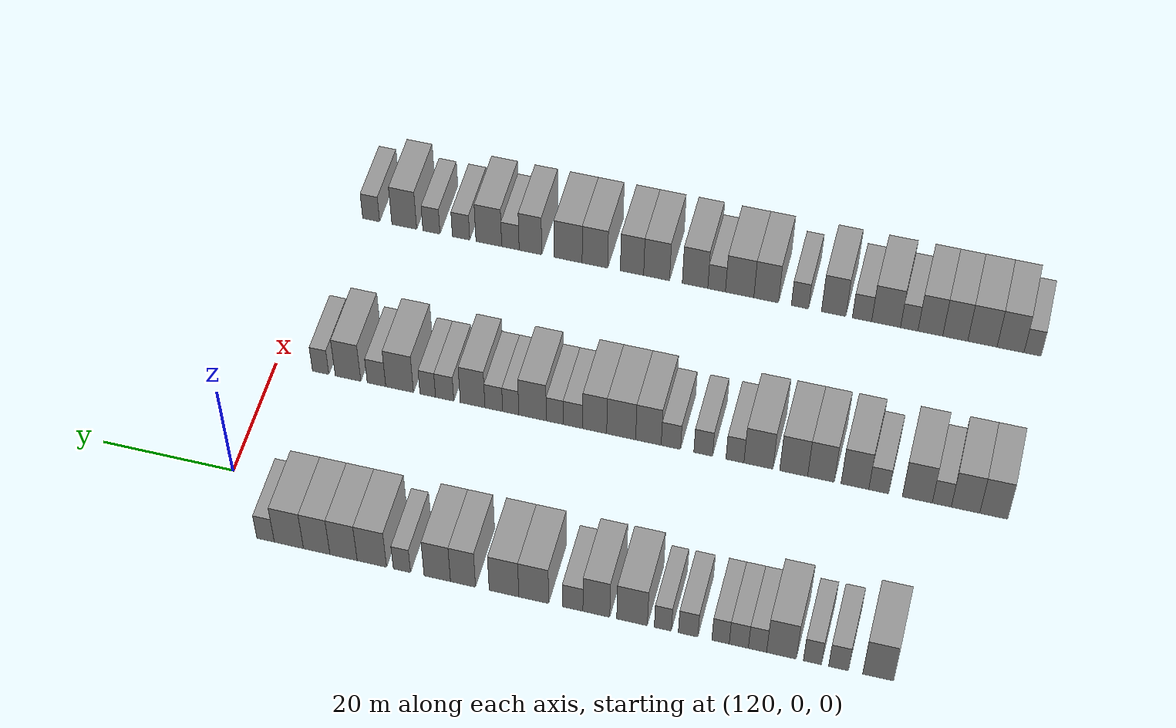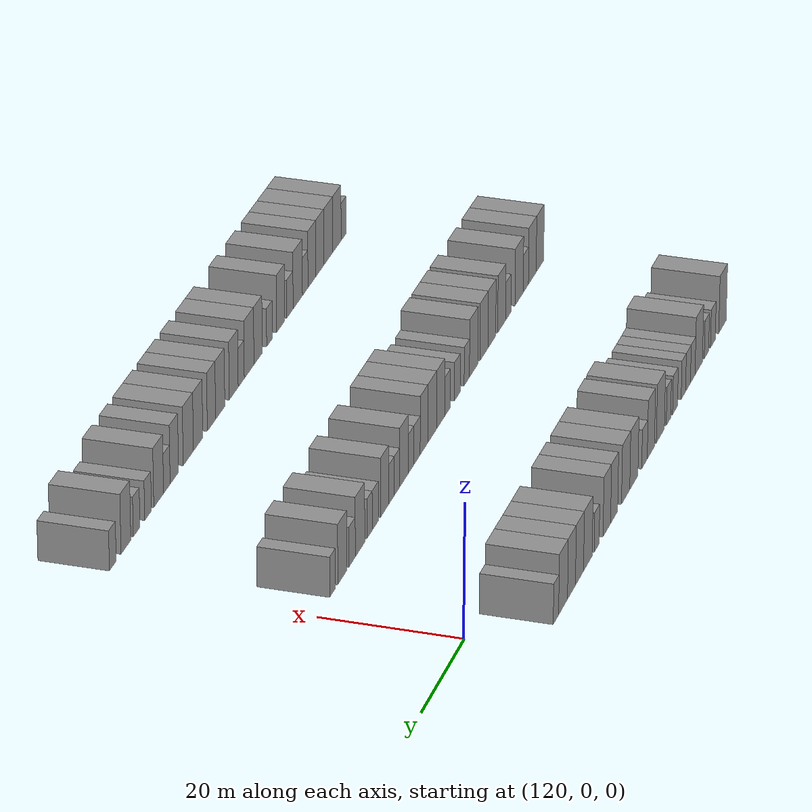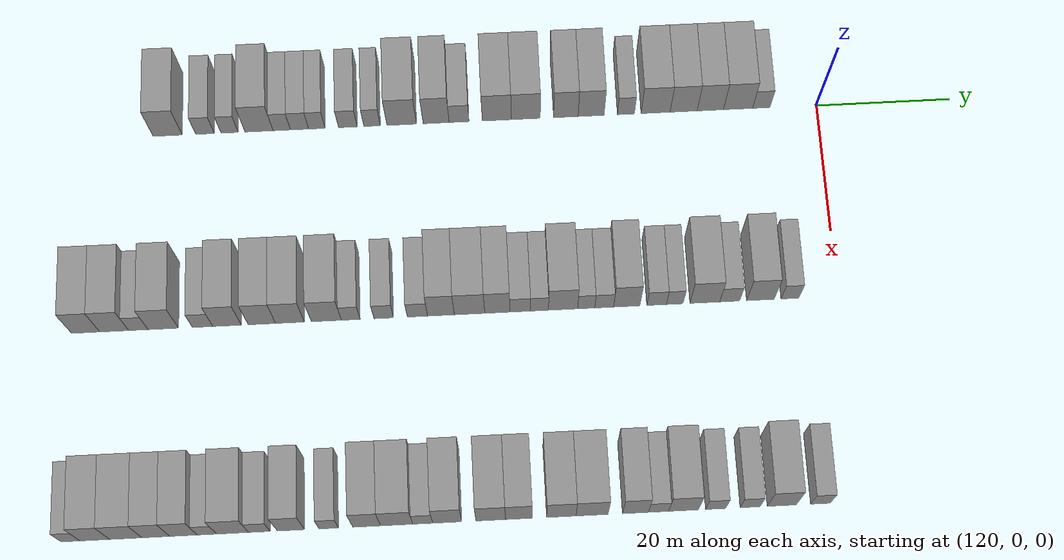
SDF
<sdf version="1.6">
 <world name="default">
  <model name="building_761">
   <static>1</static>
   <pose>115.0000 -97.0466 0 0.000000 0.000000 0.000000</pose>
   <link name="link">
    <pose>0 0 4.50 0 0 0</pose>
    <collision name="collision"><geometry><box><size>10.0000 4.3271 9.0000</size></box></geometry></collision>
    <visual name="visual">
     <cast_shadows>0</cast_shadows>
     <geometry><box><size>10.0000 4.3271 9.0000</size></box></geometry>
     <material>
      <script>
       <uri>model://grey_wall/materials/scripts</uri>
       <uri>model://grey_wall/materials/textures</uri>
       <name>vrc/grey_wall</name>
      </script>
     </material>
    </visual>
   </link>
  </model>
  <model name="building_762">
   <static>1</static>
   <pose>115.0000 -91.4941 0 0.000000 0.000000 0.000000</pose>
   <link name="link">
    <pose>0 0 3.00 0 0 0</pose>
    <collision name="collision"><geometry><box><size>10.0000 2.7779 6.0000</size></box></geometry></collision>
    <visual name="visual">
     <cast_shadows>0</cast_shadows>
     <geometry><box><size>10.0000 2.7779 6.0000</size></box></geometry>
     <material>
      <script>
       <uri>model://grey_wall/materials/scripts</uri>
       <uri>model://grey_wall/materials/textures</uri>
       <name>vrc/grey_wall</name>
      </script>
     </material>
    </visual>
   </link>
  </model>
  <model name="building_763">
   <static>1</static>
   <pose>115.0000 -87.8286 0 0.000000 0.000000 0.000000</pose>
   <link name="link">
    <pose>0 0 3.00 0 0 0</pose>
    <collision name="collision"><geometry><box><size>10.0000 2.5532 6.0000</size></box></geometry></collision>
    <visual name="visual">
     <cast_shadows>0</cast_shadows>
     <geometry><box><size>10.0000 2.5532 6.0000</size></box></geometry>
     <material>
      <script>
       <uri>model://grey_wall/materials/scripts</uri>
       <uri>model://grey_wall/materials/textures</uri>
       <name>vrc/grey_wall</name>
      </script>
     </material>
    </visual>
   </link>
  </model>
  <model name="building_764">
   <static>1</static>
   <pose>115.0000 -83.4546 0 0.000000 0.000000 0.000000</pose>
   <link name="link">
    <pose>0 0 4.50 0 0 0</pose>
    <collision name="collision"><geometry><box><size>10.0000 4.1949 9.0000</size></box></geometry></collision>
    <visual name="visual">
     <cast_shadows>0</cast_shadows>
     <geometry><box><size>10.0000 4.1949 9.0000</size></box></geometry>
     <material>
      <script>
       <uri>model://grey_wall/materials/scripts</uri>
       <uri>model://grey_wall/materials/textures</uri>
       <name>vrc/grey_wall</name>
      </script>
     </material>
    </visual>
   </link>
  </model>
  <model name="building_765">
   <static>1</static>
   <pose>115.0000 -80.0646 0 0.000000 0.000000 0.000000</pose>
   <link name="link">
    <pose>0 0 3.00 0 0 0</pose>
    <collision name="collision"><geometry><box><size>10.0000 2.5852 6.0000</size></box></geometry></collision>
    <visual name="visual">
     <cast_shadows>0</cast_shadows>
     <geometry><box><size>10.0000 2.5852 6.0000</size></box></geometry>
     <material>
      <script>
       <uri>model://grey_wall/materials/scripts</uri>
       <uri>model://grey_wall/materials/textures</uri>
       <name>vrc/grey_wall</name>
      </script>
     </material>
    </visual>
   </link>
  </model>
  <model name="building_766">
   <static>1</static>
   <pose>115.0000 -77.4137 0 0.000000 0.000000 0.000000</pose>
   <link name="link">
    <pose>0 0 3.00 0 0 0</pose>
    <collision name="collision"><geometry><box><size>10.0000 2.7165 6.0000</size></box></geometry></collision>
    <visual name="visual">
     <cast_shadows>0</cast_shadows>
     <geometry><box><size>10.0000 2.7165 6.0000</size></box></geometry>
     <material>
      <script>
       <uri>model://grey_wall/materials/scripts</uri>
       <uri>model://grey_wall/materials/textures</uri>
       <name>vrc/grey_wall</name>
      </script>
     </material>
    </visual>
   </link>
  </model>
  <model name="building_767">
   <static>1</static>
   <pose>115.0000 -74.8242 0 0.000000 0.000000 0.000000</pose>
   <link name="link">
    <pose>0 0 3.00 0 0 0</pose>
    <collision name="collision"><geometry><box><size>10.0000 2.4624 6.0000</size></box></geometry></collision>
    <visual name="visual">
     <cast_shadows>0</cast_shadows>
     <geometry><box><size>10.0000 2.4624 6.0000</size></box></geometry>
     <material>
      <script>
       <uri>model://grey_wall/materials/scripts</uri>
       <uri>model://grey_wall/materials/textures</uri>
       <name>vrc/grey_wall</name>
      </script>
     </material>
    </visual>
   </link>
  </model>
  <model name="building_768">
   <static>1</static>
   <pose>115.0000 -70.2018 0 0.000000 0.000000 0.000000</pose>
   <link name="link">
    <pose>0 0 3.00 0 0 0</pose>
    <collision name="collision"><geometry><box><size>10.0000 2.7823 6.0000</size></box></geometry></collision>
    <visual name="visual">
     <cast_shadows>0</cast_shadows>
     <geometry><box><size>10.0000 2.7823 6.0000</size></box></geometry>
     <material>
      <script>
       <uri>model://grey_wall/materials/scripts</uri>
       <uri>model://grey_wall/materials/textures</uri>
       <name>vrc/grey_wall</name>
      </script>
     </material>
    </visual>
   </link>
  </model>
  <model name="building_769">
   <static>1</static>
   <pose>115.0000 -66.5893 0 0.000000 0.000000 0.000000</pose>
   <link name="link">
    <pose>0 0 3.00 0 0 0</pose>
    <collision name="collision"><geometry><box><size>10.0000 2.4428 6.0000</size></box></geometry></collision>
    <visual name="visual">
     <cast_shadows>0</cast_shadows>
     <geometry><box><size>10.0000 2.4428 6.0000</size></box></geometry>
     <material>
      <script>
       <uri>model://grey_wall/materials/scripts</uri>
       <uri>model://grey_wall/materials/textures</uri>
       <name>vrc/grey_wall</name>
      </script>
     </material>
    </visual>
   </link>
  </model>
  <model name="building_770">
   <static>1</static>
   <pose>115.0000 -62.1662 0 0.000000 0.000000 0.000000</pose>
   <link name="link">
    <pose>0 0 4.50 0 0 0</pose>
    <collision name="collision"><geometry><box><size>10.0000 4.4035 9.0000</size></box></geometry></collision>
    <visual name="visual">
     <cast_shadows>0</cast_shadows>
     <geometry><box><size>10.0000 4.4035 9.0000</size></box></geometry>
     <material>
      <script>
       <uri>model://grey_wall/materials/scripts</uri>
       <uri>model://grey_wall/materials/textures</uri>
       <name>vrc/grey_wall</name>
      </script>
     </material>
    </visual>
   </link>
  </model>
  <model name="building_771">
   <static>1</static>
   <pose>115.0000 -57.0259 0 0.000000 0.000000 0.000000</pose>
   <link name="link">
    <pose>0 0 4.50 0 0 0</pose>
    <collision name="collision"><geometry><box><size>10.0000 3.8770 9.0000</size></box></geometry></collision>
    <visual name="visual">
     <cast_shadows>0</cast_shadows>
     <geometry><box><size>10.0000 3.8770 9.0000</size></box></geometry>
     <material>
      <script>
       <uri>model://grey_wall/materials/scripts</uri>
       <uri>model://grey_wall/materials/textures</uri>
       <name>vrc/grey_wall</name>
      </script>
     </material>
    </visual>
   </link>
  </model>
  <model name="building_772">
   <static>1</static>
   <pose>115.0000 -53.6048 0 0.000000 0.000000 0.000000</pose>
   <link name="link">
    <pose>0 0 3.00 0 0 0</pose>
    <collision name="collision"><geometry><box><size>10.0000 2.9653 6.0000</size></box></geometry></collision>
    <visual name="visual">
     <cast_shadows>0</cast_shadows>
     <geometry><box><size>10.0000 2.9653 6.0000</size></box></geometry>
     <material>
      <script>
       <uri>model://grey_wall/materials/scripts</uri>
       <uri>model://grey_wall/materials/textures</uri>
       <name>vrc/grey_wall</name>
      </script>
     </material>
    </visual>
   </link>
  </model>
  <model name="building_773">
   <static>1</static>
   <pose>115.0000 -47.9509 0 0.000000 0.000000 0.000000</pose>
   <link name="link">
    <pose>0 0 4.50 0 0 0</pose>
    <collision name="collision"><geometry><box><size>10.0000 4.3425 9.0000</size></box></geometry></collision>
    <visual name="visual">
     <cast_shadows>0</cast_shadows>
     <geometry><box><size>10.0000 4.3425 9.0000</size></box></geometry>
     <material>
      <script>
       <uri>model://grey_wall/materials/scripts</uri>
       <uri>model://grey_wall/materials/textures</uri>
       <name>vrc/grey_wall</name>
      </script>
     </material>
    </visual>
   </link>
  </model>
  <model name="building_774">
   <static>1</static>
   <pose>115.0000 -43.6194 0 0.000000 0.000000 0.000000</pose>
   <link name="link">
    <pose>0 0 4.50 0 0 0</pose>
    <collision name="collision"><geometry><box><size>10.0000 4.3204 9.0000</size></box></geometry></collision>
    <visual name="visual">
     <cast_shadows>0</cast_shadows>
     <geometry><box><size>10.0000 4.3204 9.0000</size></box></geometry>
     <material>
      <script>
       <uri>model://grey_wall/materials/scripts</uri>
       <uri>model://grey_wall/materials/textures</uri>
       <name>vrc/grey_wall</name>
      </script>
     </material>
    </visual>
   </link>
  </model>
  <model name="building_775">
   <static>1</static>
   <pose>115.0000 -37.6234 0 0.000000 0.000000 0.000000</pose>
   <link name="link">
    <pose>0 0 4.50 0 0 0</pose>
    <collision name="collision"><geometry><box><size>10.0000 3.6717 9.0000</size></box></geometry></collision>
    <visual name="visual">
     <cast_shadows>0</cast_shadows>
     <geometry><box><size>10.0000 3.6717 9.0000</size></box></geometry>
     <material>
      <script>
       <uri>model://grey_wall/materials/scripts</uri>
       <uri>model://grey_wall/materials/textures</uri>
       <name>vrc/grey_wall</name>
      </script>
     </material>
    </visual>
   </link>
  </model>
  <model name="building_776">
   <static>1</static>
   <pose>115.0000 -33.8435 0 0.000000 0.000000 0.000000</pose>
   <link name="link">
    <pose>0 0 4.50 0 0 0</pose>
    <collision name="collision"><geometry><box><size>10.0000 3.8881 9.0000</size></box></geometry></collision>
    <visual name="visual">
     <cast_shadows>0</cast_shadows>
     <geometry><box><size>10.0000 3.8881 9.0000</size></box></geometry>
     <material>
      <script>
       <uri>model://grey_wall/materials/scripts</uri>
       <uri>model://grey_wall/materials/textures</uri>
       <name>vrc/grey_wall</name>
      </script>
     </material>
    </visual>
   </link>
  </model>
  <model name="building_777">
   <static>1</static>
   <pose>115.0000 -28.6272 0 0.000000 0.000000 0.000000</pose>
   <link name="link">
    <pose>0 0 3.00 0 0 0</pose>
    <collision name="collision"><geometry><box><size>10.0000 2.5444 6.0000</size></box></geometry></collision>
    <visual name="visual">
     <cast_shadows>0</cast_shadows>
     <geometry><box><size>10.0000 2.5444 6.0000</size></box></geometry>
     <material>
      <script>
       <uri>model://grey_wall/materials/scripts</uri>
       <uri>model://grey_wall/materials/textures</uri>
       <name>vrc/grey_wall</name>
      </script>
     </material>
    </visual>
   </link>
  </model>
  <model name="building_778">
   <static>1</static>
   <pose>115.0000 -24.1770 0 0.000000 0.000000 0.000000</pose>
   <link name="link">
    <pose>0 0 4.50 0 0 0</pose>
    <collision name="collision"><geometry><box><size>10.0000 4.3560 9.0000</size></box></geometry></collision>
    <visual name="visual">
     <cast_shadows>0</cast_shadows>
     <geometry><box><size>10.0000 4.3560 9.0000</size></box></geometry>
     <material>
      <script>
       <uri>model://grey_wall/materials/scripts</uri>
       <uri>model://grey_wall/materials/textures</uri>
       <name>vrc/grey_wall</name>
      </script>
     </material>
    </visual>
   </link>
  </model>
  <model name="building_779">
   <static>1</static>
   <pose>115.0000 -19.9684 0 0.000000 0.000000 0.000000</pose>
   <link name="link">
    <pose>0 0 4.50 0 0 0</pose>
    <collision name="collision"><geometry><box><size>10.0000 4.0613 9.0000</size></box></geometry></collision>
    <visual name="visual">
     <cast_shadows>0</cast_shadows>
     <geometry><box><size>10.0000 4.0613 9.0000</size></box></geometry>
     <material>
      <script>
       <uri>model://grey_wall/materials/scripts</uri>
       <uri>model://grey_wall/materials/textures</uri>
       <name>vrc/grey_wall</name>
      </script>
     </material>
    </visual>
   </link>
  </model>
  <model name="building_780">
   <static>1</static>
   <pose>115.0000 -15.9633 0 0.000000 0.000000 0.000000</pose>
   <link name="link">
    <pose>0 0 4.50 0 0 0</pose>
    <collision name="collision"><geometry><box><size>10.0000 3.9489 9.0000</size></box></geometry></collision>
    <visual name="visual">
     <cast_shadows>0</cast_shadows>
     <geometry><box><size>10.0000 3.9489 9.0000</size></box></geometry>
     <material>
      <script>
       <uri>model://grey_wall/materials/scripts</uri>
       <uri>model://grey_wall/materials/textures</uri>
       <name>vrc/grey_wall</name>
      </script>
     </material>
    </visual>
   </link>
  </model>
  <model name="building_781">
   <static>1</static>
   <pose>115.0000 -11.8020 0 0.000000 0.000000 0.000000</pose>
   <link name="link">
    <pose>0 0 4.50 0 0 0</pose>
    <collision name="collision"><geometry><box><size>10.0000 4.3737 9.0000</size></box></geometry></collision>
    <visual name="visual">
     <cast_shadows>0</cast_shadows>
     <geometry><box><size>10.0000 4.3737 9.0000</size></box></geometry>
     <material>
      <script>
       <uri>model://grey_wall/materials/scripts</uri>
       <uri>model://grey_wall/materials/textures</uri>
       <name>vrc/grey_wall</name>
      </script>
     </material>
    </visual>
   </link>
  </model>
  <model name="building_782">
   <static>1</static>
   <pose>115.0000 -8.3048 0 0.000000 0.000000 0.000000</pose>
   <link name="link">
    <pose>0 0 3.00 0 0 0</pose>
    <collision name="collision"><geometry><box><size>10.0000 2.6205 6.0000</size></box></geometry></collision>
    <visual name="visual">
     <cast_shadows>0</cast_shadows>
     <geometry><box><size>10.0000 2.6205 6.0000</size></box></geometry>
     <material>
      <script>
       <uri>model://grey_wall/materials/scripts</uri>
       <uri>model://grey_wall/materials/textures</uri>
       <name>vrc/grey_wall</name>
      </script>
     </material>
    </visual>
   </link>
  </model>
  <model name="building_979">
   <static>1</static>
   <pose>145.0000 -108.3825 0 0.000000 0.000000 0.000000</pose>
   <link name="link">
    <pose>0 0 4.50 0 0 0</pose>
    <collision name="collision"><geometry><box><size>10.0000 4.0479 9.0000</size></box></geometry></collision>
    <visual name="visual">
     <cast_shadows>0</cast_shadows>
     <geometry><box><size>10.0000 4.0479 9.0000</size></box></geometry>
     <material>
      <script>
       <uri>model://grey_wall/materials/scripts</uri>
       <uri>model://grey_wall/materials/textures</uri>
       <name>vrc/grey_wall</name>
      </script>
     </material>
    </visual>
   </link>
  </model>
  <model name="building_980">
   <static>1</static>
   <pose>145.0000 -104.2856 0 0.000000 0.000000 0.000000</pose>
   <link name="link">
    <pose>0 0 4.50 0 0 0</pose>
    <collision name="collision"><geometry><box><size>10.0000 4.1459 9.0000</size></box></geometry></collision>
    <visual name="visual">
     <cast_shadows>0</cast_shadows>
     <geometry><box><size>10.0000 4.1459 9.0000</size></box></geometry>
     <material>
      <script>
       <uri>model://grey_wall/materials/scripts</uri>
       <uri>model://grey_wall/materials/textures</uri>
       <name>vrc/grey_wall</name>
      </script>
     </material>
    </visual>
   </link>
  </model>
  <model name="building_981">
   <static>1</static>
   <pose>145.0000 -100.8281 0 0.000000 0.000000 0.000000</pose>
   <link name="link">
    <pose>0 0 3.00 0 0 0</pose>
    <collision name="collision"><geometry><box><size>10.0000 2.7692 6.0000</size></box></geometry></collision>
    <visual name="visual">
     <cast_shadows>0</cast_shadows>
     <geometry><box><size>10.0000 2.7692 6.0000</size></box></geometry>
     <material>
      <script>
       <uri>model://grey_wall/materials/scripts</uri>
       <uri>model://grey_wall/materials/textures</uri>
       <name>vrc/grey_wall</name>
      </script>
     </material>
    </visual>
   </link>
  </model>
  <model name="building_982">
   <static>1</static>
   <pose>145.0000 -97.2544 0 0.000000 0.000000 0.000000</pose>
   <link name="link">
    <pose>0 0 4.50 0 0 0</pose>
    <collision name="collision"><geometry><box><size>10.0000 4.3783 9.0000</size></box></geometry></collision>
    <visual name="visual">
     <cast_shadows>0</cast_shadows>
     <geometry><box><size>10.0000 4.3783 9.0000</size></box></geometry>
     <material>
      <script>
       <uri>model://grey_wall/materials/scripts</uri>
       <uri>model://grey_wall/materials/textures</uri>
       <name>vrc/grey_wall</name>
      </script>
     </material>
    </visual>
   </link>
  </model>
  <model name="building_983">
   <static>1</static>
   <pose>145.0000 -91.6058 0 0.000000 0.000000 0.000000</pose>
   <link name="link">
    <pose>0 0 3.00 0 0 0</pose>
    <collision name="collision"><geometry><box><size>10.0000 2.9190 6.0000</size></box></geometry></collision>
    <visual name="visual">
     <cast_shadows>0</cast_shadows>
     <geometry><box><size>10.0000 2.9190 6.0000</size></box></geometry>
     <material>
      <script>
       <uri>model://grey_wall/materials/scripts</uri>
       <uri>model://grey_wall/materials/textures</uri>
       <name>vrc/grey_wall</name>
      </script>
     </material>
    </visual>
   </link>
  </model>
  <model name="building_984">
   <static>1</static>
   <pose>145.0000 -88.1043 0 0.000000 0.000000 0.000000</pose>
   <link name="link">
    <pose>0 0 4.50 0 0 0</pose>
    <collision name="collision"><geometry><box><size>10.0000 4.0840 9.0000</size></box></geometry></collision>
    <visual name="visual">
     <cast_shadows>0</cast_shadows>
     <geometry><box><size>10.0000 4.0840 9.0000</size></box></geometry>
     <material>
      <script>
       <uri>model://grey_wall/materials/scripts</uri>
       <uri>model://grey_wall/materials/textures</uri>
       <name>vrc/grey_wall</name>
      </script>
     </material>
    </visual>
   </link>
  </model>
  <model name="building_985">
   <static>1</static>
   <pose>145.0000 -83.0952 0 0.000000 0.000000 0.000000</pose>
   <link name="link">
    <pose>0 0 4.50 0 0 0</pose>
    <collision name="collision"><geometry><box><size>10.0000 3.9342 9.0000</size></box></geometry></collision>
    <visual name="visual">
     <cast_shadows>0</cast_shadows>
     <geometry><box><size>10.0000 3.9342 9.0000</size></box></geometry>
     <material>
      <script>
       <uri>model://grey_wall/materials/scripts</uri>
       <uri>model://grey_wall/materials/textures</uri>
       <name>vrc/grey_wall</name>
      </script>
     </material>
    </visual>
   </link>
  </model>
  <model name="building_986">
   <static>1</static>
   <pose>145.0000 -79.0582 0 0.000000 0.000000 0.000000</pose>
   <link name="link">
    <pose>0 0 4.50 0 0 0</pose>
    <collision name="collision"><geometry><box><size>10.0000 4.1399 9.0000</size></box></geometry></collision>
    <visual name="visual">
     <cast_shadows>0</cast_shadows>
     <geometry><box><size>10.0000 4.1399 9.0000</size></box></geometry>
     <material>
      <script>
       <uri>model://grey_wall/materials/scripts</uri>
       <uri>model://grey_wall/materials/textures</uri>
       <name>vrc/grey_wall</name>
      </script>
     </material>
    </visual>
   </link>
  </model>
  <model name="building_987">
   <static>1</static>
   <pose>145.0000 -73.8247 0 0.000000 0.000000 0.000000</pose>
   <link name="link">
    <pose>0 0 4.50 0 0 0</pose>
    <collision name="collision"><geometry><box><size>10.0000 4.3270 9.0000</size></box></geometry></collision>
    <visual name="visual">
     <cast_shadows>0</cast_shadows>
     <geometry><box><size>10.0000 4.3270 9.0000</size></box></geometry>
     <material>
      <script>
       <uri>model://grey_wall/materials/scripts</uri>
       <uri>model://grey_wall/materials/textures</uri>
       <name>vrc/grey_wall</name>
      </script>
     </material>
    </visual>
   </link>
  </model>
  <model name="building_988">
   <static>1</static>
   <pose>145.0000 -70.3190 0 0.000000 0.000000 0.000000</pose>
   <link name="link">
    <pose>0 0 3.00 0 0 0</pose>
    <collision name="collision"><geometry><box><size>10.0000 2.6844 6.0000</size></box></geometry></collision>
    <visual name="visual">
     <cast_shadows>0</cast_shadows>
     <geometry><box><size>10.0000 2.6844 6.0000</size></box></geometry>
     <material>
      <script>
       <uri>model://grey_wall/materials/scripts</uri>
       <uri>model://grey_wall/materials/textures</uri>
       <name>vrc/grey_wall</name>
      </script>
     </material>
    </visual>
   </link>
  </model>
  <model name="building_989">
   <static>1</static>
   <pose>145.0000 -65.5748 0 0.000000 0.000000 0.000000</pose>
   <link name="link">
    <pose>0 0 3.00 0 0 0</pose>
    <collision name="collision"><geometry><box><size>10.0000 2.8040 6.0000</size></box></geometry></collision>
    <visual name="visual">
     <cast_shadows>0</cast_shadows>
     <geometry><box><size>10.0000 2.8040 6.0000</size></box></geometry>
     <material>
      <script>
       <uri>model://grey_wall/materials/scripts</uri>
       <uri>model://grey_wall/materials/textures</uri>
       <name>vrc/grey_wall</name>
      </script>
     </material>
    </visual>
   </link>
  </model>
  <model name="building_990">
   <static>1</static>
   <pose>145.0000 -60.7160 0 0.000000 0.000000 0.000000</pose>
   <link name="link">
    <pose>0 0 3.00 0 0 0</pose>
    <collision name="collision"><geometry><box><size>10.0000 2.9134 6.0000</size></box></geometry></collision>
    <visual name="visual">
     <cast_shadows>0</cast_shadows>
     <geometry><box><size>10.0000 2.9134 6.0000</size></box></geometry>
     <material>
      <script>
       <uri>model://grey_wall/materials/scripts</uri>
       <uri>model://grey_wall/materials/textures</uri>
       <name>vrc/grey_wall</name>
      </script>
     </material>
    </visual>
   </link>
  </model>
  <model name="building_991">
   <static>1</static>
   <pose>145.0000 -57.3332 0 0.000000 0.000000 0.000000</pose>
   <link name="link">
    <pose>0 0 4.50 0 0 0</pose>
    <collision name="collision"><geometry><box><size>10.0000 3.8522 9.0000</size></box></geometry></collision>
    <visual name="visual">
     <cast_shadows>0</cast_shadows>
     <geometry><box><size>10.0000 3.8522 9.0000</size></box></geometry>
     <material>
      <script>
       <uri>model://grey_wall/materials/scripts</uri>
       <uri>model://grey_wall/materials/textures</uri>
       <name>vrc/grey_wall</name>
      </script>
     </material>
    </visual>
   </link>
  </model>
  <model name="building_992">
   <static>1</static>
   <pose>145.0000 -53.2144 0 0.000000 0.000000 0.000000</pose>
   <link name="link">
    <pose>0 0 4.50 0 0 0</pose>
    <collision name="collision"><geometry><box><size>10.0000 4.3854 9.0000</size></box></geometry></collision>
    <visual name="visual">
     <cast_shadows>0</cast_shadows>
     <geometry><box><size>10.0000 4.3854 9.0000</size></box></geometry>
     <material>
      <script>
       <uri>model://grey_wall/materials/scripts</uri>
       <uri>model://grey_wall/materials/textures</uri>
       <name>vrc/grey_wall</name>
      </script>
     </material>
    </visual>
   </link>
  </model>
  <model name="building_993">
   <static>1</static>
   <pose>145.0000 -49.2050 0 0.000000 0.000000 0.000000</pose>
   <link name="link">
    <pose>0 0 4.50 0 0 0</pose>
    <collision name="collision"><geometry><box><size>10.0000 3.6335 9.0000</size></box></geometry></collision>
    <visual name="visual">
     <cast_shadows>0</cast_shadows>
     <geometry><box><size>10.0000 3.6335 9.0000</size></box></geometry>
     <material>
      <script>
       <uri>model://grey_wall/materials/scripts</uri>
       <uri>model://grey_wall/materials/textures</uri>
       <name>vrc/grey_wall</name>
      </script>
     </material>
    </visual>
   </link>
  </model>
  <model name="building_994">
   <static>1</static>
   <pose>145.0000 -45.9005 0 0.000000 0.000000 0.000000</pose>
   <link name="link">
    <pose>0 0 3.00 0 0 0</pose>
    <collision name="collision"><geometry><box><size>10.0000 2.9755 6.0000</size></box></geometry></collision>
    <visual name="visual">
     <cast_shadows>0</cast_shadows>
     <geometry><box><size>10.0000 2.9755 6.0000</size></box></geometry>
     <material>
      <script>
       <uri>model://grey_wall/materials/scripts</uri>
       <uri>model://grey_wall/materials/textures</uri>
       <name>vrc/grey_wall</name>
      </script>
     </material>
    </visual>
   </link>
  </model>
  <model name="building_995">
   <static>1</static>
   <pose>145.0000 -43.1252 0 0.000000 0.000000 0.000000</pose>
   <link name="link">
    <pose>0 0 3.00 0 0 0</pose>
    <collision name="collision"><geometry><box><size>10.0000 2.5751 6.0000</size></box></geometry></collision>
    <visual name="visual">
     <cast_shadows>0</cast_shadows>
     <geometry><box><size>10.0000 2.5751 6.0000</size></box></geometry>
     <material>
      <script>
       <uri>model://grey_wall/materials/scripts</uri>
       <uri>model://grey_wall/materials/textures</uri>
       <name>vrc/grey_wall</name>
      </script>
     </material>
    </visual>
   </link>
  </model>
  <model name="building_996">
   <static>1</static>
   <pose>145.0000 -39.7320 0 0.000000 0.000000 0.000000</pose>
   <link name="link">
    <pose>0 0 4.50 0 0 0</pose>
    <collision name="collision"><geometry><box><size>10.0000 4.2112 9.0000</size></box></geometry></collision>
    <visual name="visual">
     <cast_shadows>0</cast_shadows>
     <geometry><box><size>10.0000 4.2112 9.0000</size></box></geometry>
     <material>
      <script>
       <uri>model://grey_wall/materials/scripts</uri>
       <uri>model://grey_wall/materials/textures</uri>
       <name>vrc/grey_wall</name>
      </script>
     </material>
    </visual>
   </link>
  </model>
  <model name="building_997">
   <static>1</static>
   <pose>145.0000 -36.3880 0 0.000000 0.000000 0.000000</pose>
   <link name="link">
    <pose>0 0 3.00 0 0 0</pose>
    <collision name="collision"><geometry><box><size>10.0000 2.4767 6.0000</size></box></geometry></collision>
    <visual name="visual">
     <cast_shadows>0</cast_shadows>
     <geometry><box><size>10.0000 2.4767 6.0000</size></box></geometry>
     <material>
      <script>
       <uri>model://grey_wall/materials/scripts</uri>
       <uri>model://grey_wall/materials/textures</uri>
       <name>vrc/grey_wall</name>
      </script>
     </material>
    </visual>
   </link>
  </model>
  <model name="building_998">
   <static>1</static>
   <pose>145.0000 -33.7911 0 0.000000 0.000000 0.000000</pose>
   <link name="link">
    <pose>0 0 3.00 0 0 0</pose>
    <collision name="collision"><geometry><box><size>10.0000 2.7171 6.0000</size></box></geometry></collision>
    <visual name="visual">
     <cast_shadows>0</cast_shadows>
     <geometry><box><size>10.0000 2.7171 6.0000</size></box></geometry>
     <material>
      <script>
       <uri>model://grey_wall/materials/scripts</uri>
       <uri>model://grey_wall/materials/textures</uri>
       <name>vrc/grey_wall</name>
      </script>
     </material>
    </visual>
   </link>
  </model>
  <model name="building_999">
   <static>1</static>
   <pose>145.0000 -30.5303 0 0.000000 0.000000 0.000000</pose>
   <link name="link">
    <pose>0 0 4.50 0 0 0</pose>
    <collision name="collision"><geometry><box><size>10.0000 3.8045 9.0000</size></box></geometry></collision>
    <visual name="visual">
     <cast_shadows>0</cast_shadows>
     <geometry><box><size>10.0000 3.8045 9.0000</size></box></geometry>
     <material>
      <script>
       <uri>model://grey_wall/materials/scripts</uri>
       <uri>model://grey_wall/materials/textures</uri>
       <name>vrc/grey_wall</name>
      </script>
     </material>
    </visual>
   </link>
  </model>
  <model name="building_1000">
   <static>1</static>
   <pose>145.0000 -26.2149 0 0.000000 0.000000 0.000000</pose>
   <link name="link">
    <pose>0 0 3.00 0 0 0</pose>
    <collision name="collision"><geometry><box><size>10.0000 2.8264 6.0000</size></box></geometry></collision>
    <visual name="visual">
     <cast_shadows>0</cast_shadows>
     <geometry><box><size>10.0000 2.8264 6.0000</size></box></geometry>
     <material>
      <script>
       <uri>model://grey_wall/materials/scripts</uri>
       <uri>model://grey_wall/materials/textures</uri>
       <name>vrc/grey_wall</name>
      </script>
     </material>
    </visual>
   </link>
  </model>
  <model name="building_1001">
   <static>1</static>
   <pose>145.0000 -23.5952 0 0.000000 0.000000 0.000000</pose>
   <link name="link">
    <pose>0 0 3.00 0 0 0</pose>
    <collision name="collision"><geometry><box><size>10.0000 2.4131 6.0000</size></box></geometry></collision>
    <visual name="visual">
     <cast_shadows>0</cast_shadows>
     <geometry><box><size>10.0000 2.4131 6.0000</size></box></geometry>
     <material>
      <script>
       <uri>model://grey_wall/materials/scripts</uri>
       <uri>model://grey_wall/materials/textures</uri>
       <name>vrc/grey_wall</name>
      </script>
     </material>
    </visual>
   </link>
  </model>
  <model name="building_1002">
   <static>1</static>
   <pose>145.0000 -19.2319 0 0.000000 0.000000 0.000000</pose>
   <link name="link">
    <pose>0 0 4.50 0 0 0</pose>
    <collision name="collision"><geometry><box><size>10.0000 4.3136 9.0000</size></box></geometry></collision>
    <visual name="visual">
     <cast_shadows>0</cast_shadows>
     <geometry><box><size>10.0000 4.3136 9.0000</size></box></geometry>
     <material>
      <script>
       <uri>model://grey_wall/materials/scripts</uri>
       <uri>model://grey_wall/materials/textures</uri>
       <name>vrc/grey_wall</name>
      </script>
     </material>
    </visual>
   </link>
  </model>
  <model name="building_1003">
   <static>1</static>
   <pose>145.0000 -15.6306 0 0.000000 0.000000 0.000000</pose>
   <link name="link">
    <pose>0 0 3.00 0 0 0</pose>
    <collision name="collision"><geometry><box><size>10.0000 2.8890 6.0000</size></box></geometry></collision>
    <visual name="visual">
     <cast_shadows>0</cast_shadows>
     <geometry><box><size>10.0000 2.8890 6.0000</size></box></geometry>
     <material>
      <script>
       <uri>model://grey_wall/materials/scripts</uri>
       <uri>model://grey_wall/materials/textures</uri>
       <name>vrc/grey_wall</name>
      </script>
     </material>
    </visual>
   </link>
  </model>
  <model name="building_1004">
   <static>1</static>
   <pose>145.0000 -11.1853 0 0.000000 0.000000 0.000000</pose>
   <link name="link">
    <pose>0 0 4.50 0 0 0</pose>
    <collision name="collision"><geometry><box><size>10.0000 4.0017 9.0000</size></box></geometry></collision>
    <visual name="visual">
     <cast_shadows>0</cast_shadows>
     <geometry><box><size>10.0000 4.0017 9.0000</size></box></geometry>
     <material>
      <script>
       <uri>model://grey_wall/materials/scripts</uri>
       <uri>model://grey_wall/materials/textures</uri>
       <name>vrc/grey_wall</name>
      </script>
     </material>
    </visual>
   </link>
  </model>
  <model name="building_1005">
   <static>1</static>
   <pose>145.0000 -6.9002 0 0.000000 0.000000 0.000000</pose>
   <link name="link">
    <pose>0 0 3.00 0 0 0</pose>
    <collision name="collision"><geometry><box><size>10.0000 2.5684 6.0000</size></box></geometry></collision>
    <visual name="visual">
     <cast_shadows>0</cast_shadows>
     <geometry><box><size>10.0000 2.5684 6.0000</size></box></geometry>
     <material>
      <script>
       <uri>model://grey_wall/materials/scripts</uri>
       <uri>model://grey_wall/materials/textures</uri>
       <name>vrc/grey_wall</name>
      </script>
     </material>
    </visual>
   </link>
  </model>
  <model name="building_1210">
   <static>1</static>
   <pose>175.0000 -109.5895 0 0.000000 0.000000 0.000000</pose>
   <link name="link">
    <pose>0 0 3.00 0 0 0</pose>
    <collision name="collision"><geometry><box><size>10.0000 2.5956 6.0000</size></box></geometry></collision>
    <visual name="visual">
     <cast_shadows>0</cast_shadows>
     <geometry><box><size>10.0000 2.5956 6.0000</size></box></geometry>
     <material>
      <script>
       <uri>model://grey_wall/materials/scripts</uri>
       <uri>model://grey_wall/materials/textures</uri>
       <name>vrc/grey_wall</name>
      </script>
     </material>
    </visual>
   </link>
  </model>
  <model name="building_1211">
   <static>1</static>
   <pose>175.0000 -106.2487 0 0.000000 0.000000 0.000000</pose>
   <link name="link">
    <pose>0 0 4.50 0 0 0</pose>
    <collision name="collision"><geometry><box><size>10.0000 4.0860 9.0000</size></box></geometry></collision>
    <visual name="visual">
     <cast_shadows>0</cast_shadows>
     <geometry><box><size>10.0000 4.0860 9.0000</size></box></geometry>
     <material>
      <script>
       <uri>model://grey_wall/materials/scripts</uri>
       <uri>model://grey_wall/materials/textures</uri>
       <name>vrc/grey_wall</name>
      </script>
     </material>
    </visual>
   </link>
  </model>
  <model name="building_1212">
   <static>1</static>
   <pose>175.0000 -101.9737 0 0.000000 0.000000 0.000000</pose>
   <link name="link">
    <pose>0 0 4.50 0 0 0</pose>
    <collision name="collision"><geometry><box><size>10.0000 4.4640 9.0000</size></box></geometry></collision>
    <visual name="visual">
     <cast_shadows>0</cast_shadows>
     <geometry><box><size>10.0000 4.4640 9.0000</size></box></geometry>
     <material>
      <script>
       <uri>model://grey_wall/materials/scripts</uri>
       <uri>model://grey_wall/materials/textures</uri>
       <name>vrc/grey_wall</name>
      </script>
     </material>
    </visual>
   </link>
  </model>
  <model name="building_1213">
   <static>1</static>
   <pose>175.0000 -97.8307 0 0.000000 0.000000 0.000000</pose>
   <link name="link">
    <pose>0 0 4.50 0 0 0</pose>
    <collision name="collision"><geometry><box><size>10.0000 3.8220 9.0000</size></box></geometry></collision>
    <visual name="visual">
     <cast_shadows>0</cast_shadows>
     <geometry><box><size>10.0000 3.8220 9.0000</size></box></geometry>
     <material>
      <script>
       <uri>model://grey_wall/materials/scripts</uri>
       <uri>model://grey_wall/materials/textures</uri>
       <name>vrc/grey_wall</name>
      </script>
     </material>
    </visual>
   </link>
  </model>
  <model name="building_1214">
   <static>1</static>
   <pose>175.0000 -94.0240 0 0.000000 0.000000 0.000000</pose>
   <link name="link">
    <pose>0 0 4.50 0 0 0</pose>
    <collision name="collision"><geometry><box><size>10.0000 3.7914 9.0000</size></box></geometry></collision>
    <visual name="visual">
     <cast_shadows>0</cast_shadows>
     <geometry><box><size>10.0000 3.7914 9.0000</size></box></geometry>
     <material>
      <script>
       <uri>model://grey_wall/materials/scripts</uri>
       <uri>model://grey_wall/materials/textures</uri>
       <name>vrc/grey_wall</name>
      </script>
     </material>
    </visual>
   </link>
  </model>
  <model name="building_1215">
   <static>1</static>
   <pose>175.0000 -90.7894 0 0.000000 0.000000 0.000000</pose>
   <link name="link">
    <pose>0 0 3.00 0 0 0</pose>
    <collision name="collision"><geometry><box><size>10.0000 2.6779 6.0000</size></box></geometry></collision>
    <visual name="visual">
     <cast_shadows>0</cast_shadows>
     <geometry><box><size>10.0000 2.6779 6.0000</size></box></geometry>
     <material>
      <script>
       <uri>model://grey_wall/materials/scripts</uri>
       <uri>model://grey_wall/materials/textures</uri>
       <name>vrc/grey_wall</name>
      </script>
     </material>
    </visual>
   </link>
  </model>
  <model name="building_1216">
   <static>1</static>
   <pose>175.0000 -87.2320 0 0.000000 0.000000 0.000000</pose>
   <link name="link">
    <pose>0 0 4.50 0 0 0</pose>
    <collision name="collision"><geometry><box><size>10.0000 4.4369 9.0000</size></box></geometry></collision>
    <visual name="visual">
     <cast_shadows>0</cast_shadows>
     <geometry><box><size>10.0000 4.4369 9.0000</size></box></geometry>
     <material>
      <script>
       <uri>model://grey_wall/materials/scripts</uri>
       <uri>model://grey_wall/materials/textures</uri>
       <name>vrc/grey_wall</name>
      </script>
     </material>
    </visual>
   </link>
  </model>
  <model name="building_1217">
   <static>1</static>
   <pose>175.0000 -83.5240 0 0.000000 0.000000 0.000000</pose>
   <link name="link">
    <pose>0 0 3.00 0 0 0</pose>
    <collision name="collision"><geometry><box><size>10.0000 2.9790 6.0000</size></box></geometry></collision>
    <visual name="visual">
     <cast_shadows>0</cast_shadows>
     <geometry><box><size>10.0000 2.9790 6.0000</size></box></geometry>
     <material>
      <script>
       <uri>model://grey_wall/materials/scripts</uri>
       <uri>model://grey_wall/materials/textures</uri>
       <name>vrc/grey_wall</name>
      </script>
     </material>
    </visual>
   </link>
  </model>
  <model name="building_1218">
   <static>1</static>
   <pose>175.0000 -79.1440 0 0.000000 0.000000 0.000000</pose>
   <link name="link">
    <pose>0 0 4.50 0 0 0</pose>
    <collision name="collision"><geometry><box><size>10.0000 3.7809 9.0000</size></box></geometry></collision>
    <visual name="visual">
     <cast_shadows>0</cast_shadows>
     <geometry><box><size>10.0000 3.7809 9.0000</size></box></geometry>
     <material>
      <script>
       <uri>model://grey_wall/materials/scripts</uri>
       <uri>model://grey_wall/materials/textures</uri>
       <name>vrc/grey_wall</name>
      </script>
     </material>
    </visual>
   </link>
  </model>
  <model name="building_1219">
   <static>1</static>
   <pose>175.0000 -73.9142 0 0.000000 0.000000 0.000000</pose>
   <link name="link">
    <pose>0 0 3.00 0 0 0</pose>
    <collision name="collision"><geometry><box><size>10.0000 2.6788 6.0000</size></box></geometry></collision>
    <visual name="visual">
     <cast_shadows>0</cast_shadows>
     <geometry><box><size>10.0000 2.6788 6.0000</size></box></geometry>
     <material>
      <script>
       <uri>model://grey_wall/materials/scripts</uri>
       <uri>model://grey_wall/materials/textures</uri>
       <name>vrc/grey_wall</name>
      </script>
     </material>
    </visual>
   </link>
  </model>
  <model name="building_1220">
   <static>1</static>
   <pose>175.0000 -68.6484 0 0.000000 0.000000 0.000000</pose>
   <link name="link">
    <pose>0 0 4.50 0 0 0</pose>
    <collision name="collision"><geometry><box><size>10.0000 3.8529 9.0000</size></box></geometry></collision>
    <visual name="visual">
     <cast_shadows>0</cast_shadows>
     <geometry><box><size>10.0000 3.8529 9.0000</size></box></geometry>
     <material>
      <script>
       <uri>model://grey_wall/materials/scripts</uri>
       <uri>model://grey_wall/materials/textures</uri>
       <name>vrc/grey_wall</name>
      </script>
     </material>
    </visual>
   </link>
  </model>
  <model name="building_1221">
   <static>1</static>
   <pose>175.0000 -64.4991 0 0.000000 0.000000 0.000000</pose>
   <link name="link">
    <pose>0 0 4.50 0 0 0</pose>
    <collision name="collision"><geometry><box><size>10.0000 4.4457 9.0000</size></box></geometry></collision>
    <visual name="visual">
     <cast_shadows>0</cast_shadows>
     <geometry><box><size>10.0000 4.4457 9.0000</size></box></geometry>
     <material>
      <script>
       <uri>model://grey_wall/materials/scripts</uri>
       <uri>model://grey_wall/materials/textures</uri>
       <name>vrc/grey_wall</name>
      </script>
     </material>
    </visual>
   </link>
  </model>
  <model name="building_1222">
   <static>1</static>
   <pose>175.0000 -60.8927 0 0.000000 0.000000 0.000000</pose>
   <link name="link">
    <pose>0 0 3.00 0 0 0</pose>
    <collision name="collision"><geometry><box><size>10.0000 2.7672 6.0000</size></box></geometry></collision>
    <visual name="visual">
     <cast_shadows>0</cast_shadows>
     <geometry><box><size>10.0000 2.7672 6.0000</size></box></geometry>
     <material>
      <script>
       <uri>model://grey_wall/materials/scripts</uri>
       <uri>model://grey_wall/materials/textures</uri>
       <name>vrc/grey_wall</name>
      </script>
     </material>
    </visual>
   </link>
  </model>
  <model name="building_1223">
   <static>1</static>
   <pose>175.0000 -57.5009 0 0.000000 0.000000 0.000000</pose>
   <link name="link">
    <pose>0 0 4.50 0 0 0</pose>
    <collision name="collision"><geometry><box><size>10.0000 4.0164 9.0000</size></box></geometry></collision>
    <visual name="visual">
     <cast_shadows>0</cast_shadows>
     <geometry><box><size>10.0000 4.0164 9.0000</size></box></geometry>
     <material>
      <script>
       <uri>model://grey_wall/materials/scripts</uri>
       <uri>model://grey_wall/materials/textures</uri>
       <name>vrc/grey_wall</name>
      </script>
     </material>
    </visual>
   </link>
  </model>
  <model name="building_1224">
   <static>1</static>
   <pose>175.0000 -51.4421 0 0.000000 0.000000 0.000000</pose>
   <link name="link">
    <pose>0 0 4.50 0 0 0</pose>
    <collision name="collision"><geometry><box><size>10.0000 4.1013 9.0000</size></box></geometry></collision>
    <visual name="visual">
     <cast_shadows>0</cast_shadows>
     <geometry><box><size>10.0000 4.1013 9.0000</size></box></geometry>
     <material>
      <script>
       <uri>model://grey_wall/materials/scripts</uri>
       <uri>model://grey_wall/materials/textures</uri>
       <name>vrc/grey_wall</name>
      </script>
     </material>
    </visual>
   </link>
  </model>
  <model name="building_1225">
   <static>1</static>
   <pose>175.0000 -47.5461 0 0.000000 0.000000 0.000000</pose>
   <link name="link">
    <pose>0 0 4.50 0 0 0</pose>
    <collision name="collision"><geometry><box><size>10.0000 3.6907 9.0000</size></box></geometry></collision>
    <visual name="visual">
     <cast_shadows>0</cast_shadows>
     <geometry><box><size>10.0000 3.6907 9.0000</size></box></geometry>
     <material>
      <script>
       <uri>model://grey_wall/materials/scripts</uri>
       <uri>model://grey_wall/materials/textures</uri>
       <name>vrc/grey_wall</name>
      </script>
     </material>
    </visual>
   </link>
  </model>
  <model name="building_1226">
   <static>1</static>
   <pose>175.0000 -41.6581 0 0.000000 0.000000 0.000000</pose>
   <link name="link">
    <pose>0 0 4.50 0 0 0</pose>
    <collision name="collision"><geometry><box><size>10.0000 4.0852 9.0000</size></box></geometry></collision>
    <visual name="visual">
     <cast_shadows>0</cast_shadows>
     <geometry><box><size>10.0000 4.0852 9.0000</size></box></geometry>
     <material>
      <script>
       <uri>model://grey_wall/materials/scripts</uri>
       <uri>model://grey_wall/materials/textures</uri>
       <name>vrc/grey_wall</name>
      </script>
     </material>
    </visual>
   </link>
  </model>
  <model name="building_1227">
   <static>1</static>
   <pose>175.0000 -37.3854 0 0.000000 0.000000 0.000000</pose>
   <link name="link">
    <pose>0 0 4.50 0 0 0</pose>
    <collision name="collision"><geometry><box><size>10.0000 4.4603 9.0000</size></box></geometry></collision>
    <visual name="visual">
     <cast_shadows>0</cast_shadows>
     <geometry><box><size>10.0000 4.4603 9.0000</size></box></geometry>
     <material>
      <script>
       <uri>model://grey_wall/materials/scripts</uri>
       <uri>model://grey_wall/materials/textures</uri>
       <name>vrc/grey_wall</name>
      </script>
     </material>
    </visual>
   </link>
  </model>
  <model name="building_1228">
   <static>1</static>
   <pose>175.0000 -31.3418 0 0.000000 0.000000 0.000000</pose>
   <link name="link">
    <pose>0 0 4.50 0 0 0</pose>
    <collision name="collision"><geometry><box><size>10.0000 3.6268 9.0000</size></box></geometry></collision>
    <visual name="visual">
     <cast_shadows>0</cast_shadows>
     <geometry><box><size>10.0000 3.6268 9.0000</size></box></geometry>
     <material>
      <script>
       <uri>model://grey_wall/materials/scripts</uri>
       <uri>model://grey_wall/materials/textures</uri>
       <name>vrc/grey_wall</name>
      </script>
     </material>
    </visual>
   </link>
  </model>
  <model name="building_1229">
   <static>1</static>
   <pose>175.0000 -28.1245 0 0.000000 0.000000 0.000000</pose>
   <link name="link">
    <pose>0 0 3.00 0 0 0</pose>
    <collision name="collision"><geometry><box><size>10.0000 2.8079 6.0000</size></box></geometry></collision>
    <visual name="visual">
     <cast_shadows>0</cast_shadows>
     <geometry><box><size>10.0000 2.8079 6.0000</size></box></geometry>
     <material>
      <script>
       <uri>model://grey_wall/materials/scripts</uri>
       <uri>model://grey_wall/materials/textures</uri>
       <name>vrc/grey_wall</name>
      </script>
     </material>
    </visual>
   </link>
  </model>
  <model name="building_1230">
   <static>1</static>
   <pose>175.0000 -24.6426 0 0.000000 0.000000 0.000000</pose>
   <link name="link">
    <pose>0 0 4.50 0 0 0</pose>
    <collision name="collision"><geometry><box><size>10.0000 4.1560 9.0000</size></box></geometry></collision>
    <visual name="visual">
     <cast_shadows>0</cast_shadows>
     <geometry><box><size>10.0000 4.1560 9.0000</size></box></geometry>
     <material>
      <script>
       <uri>model://grey_wall/materials/scripts</uri>
       <uri>model://grey_wall/materials/textures</uri>
       <name>vrc/grey_wall</name>
      </script>
     </material>
    </visual>
   </link>
  </model>
  <model name="building_1231">
   <static>1</static>
   <pose>175.0000 -20.1579 0 0.000000 0.000000 0.000000</pose>
   <link name="link">
    <pose>0 0 3.00 0 0 0</pose>
    <collision name="collision"><geometry><box><size>10.0000 2.8132 6.0000</size></box></geometry></collision>
    <visual name="visual">
     <cast_shadows>0</cast_shadows>
     <geometry><box><size>10.0000 2.8132 6.0000</size></box></geometry>
     <material>
      <script>
       <uri>model://grey_wall/materials/scripts</uri>
       <uri>model://grey_wall/materials/textures</uri>
       <name>vrc/grey_wall</name>
      </script>
     </material>
    </visual>
   </link>
  </model>
  <model name="building_1232">
   <static>1</static>
   <pose>175.0000 -15.3577 0 0.000000 0.000000 0.000000</pose>
   <link name="link">
    <pose>0 0 3.00 0 0 0</pose>
    <collision name="collision"><geometry><box><size>10.0000 2.7873 6.0000</size></box></geometry></collision>
    <visual name="visual">
     <cast_shadows>0</cast_shadows>
     <geometry><box><size>10.0000 2.7873 6.0000</size></box></geometry>
     <material>
      <script>
       <uri>model://grey_wall/materials/scripts</uri>
       <uri>model://grey_wall/materials/textures</uri>
       <name>vrc/grey_wall</name>
      </script>
     </material>
    </visual>
   </link>
  </model>
  <model name="building_1233">
   <static>1</static>
   <pose>175.0000 -10.9373 0 0.000000 0.000000 0.000000</pose>
   <link name="link">
    <pose>0 0 4.50 0 0 0</pose>
    <collision name="collision"><geometry><box><size>10.0000 4.0534 9.0000</size></box></geometry></collision>
    <visual name="visual">
     <cast_shadows>0</cast_shadows>
     <geometry><box><size>10.0000 4.0534 9.0000</size></box></geometry>
     <material>
      <script>
       <uri>model://grey_wall/materials/scripts</uri>
       <uri>model://grey_wall/materials/textures</uri>
       <name>vrc/grey_wall</name>
      </script>
     </material>
    </visual>
   </link>
  </model>
  <model name="building_1234">
   <static>1</static>
   <pose>175.0000 -5.5292 0 0.000000 0.000000 0.000000</pose>
   <link name="link">
    <pose>0 0 3.00 0 0 0</pose>
    <collision name="collision"><geometry><box><size>10.0000 2.7628 6.0000</size></box></geometry></collision>
    <visual name="visual">
     <cast_shadows>0</cast_shadows>
     <geometry><box><size>10.0000 2.7628 6.0000</size></box></geometry>
     <material>
      <script>
       <uri>model://grey_wall/materials/scripts</uri>
       <uri>model://grey_wall/materials/textures</uri>
       <name>vrc/grey_wall</name>
      </script>
     </material>
    </visual>
   </link>
  </model>
 </world>
</sdf>
